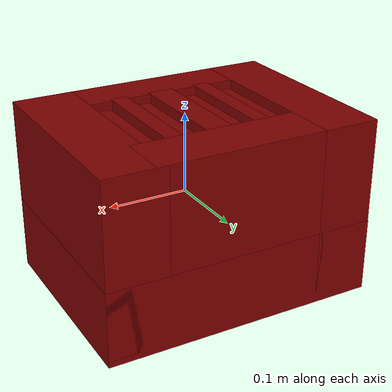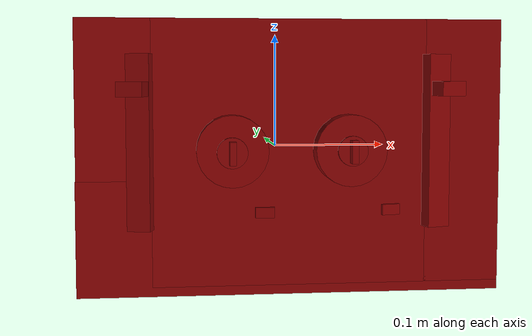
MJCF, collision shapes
<?xml version='1.0' encoding='UTF-8'?>
<mujoco model="model">
  <compiler angle="radian"/>
  <asset>
    <mesh file="visuals/Body001.obj" name="Body001_vis"/>
    <mesh file="visuals/Button001.obj" name="Button001_vis"/>
    <mesh file="visuals/Button002.obj" name="Button002_vis"/>
    <mesh file="visuals/Knob001.obj" name="Knob001_vis"/>
    <mesh file="visuals/Knob002.obj" name="Knob002_vis"/>
    <mesh file="visuals/Lever001.obj" name="Lever001_vis"/>
    <mesh file="visuals/Lever002.obj" name="Lever002_vis"/>
    <texture file="visuals/T_BC001.png" name="Body001_material" type="2d"/>
    <material name="Body001_material" rgba="1 1 1 1.0" texture="Body001_material" shininess="0.1" specular="3"/>
    <texture file="visuals/T_BC001.png" name="Button001_material" type="2d"/>
    <material name="Button001_material" rgba="1 1 1 1.0" texture="Button001_material" shininess="0.4472135901451111" specular="0.3103448502657381"/>
    <texture file="visuals/T_BC001.png" name="Button002_material" type="2d"/>
    <material name="Button002_material" rgba="1 1 1 1.0" texture="Button002_material" shininess="0.4472135901451111" specular="0.3103448502657381"/>
    <texture file="visuals/T_BC001.png" name="Knob001_material" type="2d"/>
    <material name="Knob001_material" rgba="1 1 1 1.0" texture="Knob001_material" shininess="0.4472135901451111" specular="0.3103448502657381"/>
    <texture file="visuals/T_BC001.png" name="Knob002_material" type="2d"/>
    <material name="Knob002_material" rgba="1 1 1 1.0" texture="Knob002_material" shininess="0.4472135901451111" specular="0.3103448502657381"/>
    <texture file="visuals/T_BC001.png" name="Lever001_material" type="2d"/>
    <material name="Lever001_material" rgba="1 1 1 1.0" texture="Lever001_material" shininess="0.4472135901451111" specular="0.3103448502657381"/>
    <texture file="visuals/T_BC001.png" name="Lever002_material" type="2d"/>
    <material name="Lever002_material" rgba="1 1 1 1.0" texture="Lever002_material" shininess="0.4472135901451111" specular="0.3103448502657381"/>
  </asset>
  <default>
    <default class="visual">
      <geom conaffinity="0" contype="0" group="1" type="mesh"/>
    </default>
    <default class="collision">
      <geom group="0" rgba="0.5 0 0 0.5"/>
    </default>
    <default class="spawn">
      <geom group="0" rgba="1 1 1 0.5" contype="0" conaffinity="0"/>
      <site group="0" rgba="1 1 1 0.5"/>
    </default>
    <default class="region">
      <geom group="1" conaffinity="0" contype="0" rgba="0 1 0 0"/>
    </default>
  </default>
  <worldbody>
    <body>
      <body name="object">
        <geom mesh="Body001_vis" type="mesh" solimp="0.998 0.998 0.001" solref="0.001 1" density="100" friction="0.95 0.3 0.1" class="visual" material="Body001_material"/>
        <geom class="collision" type="box" pos="-0.133261 0.016201 0.003077" size="0.035240065306425095 0.1285618394613266 0.10625135898590088" quat="1.0 0.0 0.0 0.0"/>
        <geom class="collision" type="box" pos="0.134029 0.016201 0.003077" size="0.03781827911734581 0.1285618394613266 0.10625135898590088" quat="1.0 0.0 0.0 0.0"/>
        <geom class="collision" type="box" pos="0.000245 0.111579 0.003077" size="0.10979682207107544 0.03318332880735397 0.10625135898590088" quat="1.0 0.0 0.0 0.0"/>
        <geom class="collision" type="box" pos="0.000245 -0.085129 0.003010" size="0.10979682207107544 0.027723005041480064 0.1061844676733017" quat="1.0 0.0 0.0 0.0"/>
        <geom class="collision" type="box" pos="-0.055768 0.007889 0.003124" size="0.01008566189557314 0.07094787806272507 0.1062992662191391" quat="1.0 0.0 0.0 0.0"/>
        <geom class="collision" type="box" pos="0.000027 0.007889 0.003124" size="0.01638152450323105 0.070948526263237 0.10630057752132416" quat="1.0 0.0 0.0 0.0"/>
        <geom class="collision" type="box" pos="0.056307 0.007889 0.003124" size="0.010627384297549725 0.07094787806272507 0.1062992662191391" quat="1.0 0.0 0.0 0.0"/>
        <geom class="collision" type="box" pos="0.001386 0.016201 -0.064605" size="0.1704617291688919 0.1285618394613266 0.046193644404411316" quat="1.0 0.0 0.0 0.0"/>
        <geom class="collision" type="box" pos="0.110583 -0.090029 0.012274" size="0.009369805455207825 0.0328972153365612 0.06929251551628113" quat="0.990662693977356 0.0 0.0 0.13633568584918976"/>
        <geom class="collision" type="box" pos="-0.111414 -0.088763 0.012274" size="0.0093698063865304 0.032897211611270905 0.06929251551628113" quat="0.9915878176689148 0.0 0.0 -0.12943574786186218"/>
        <geom class="collision" type="cylinder" pos="0.046797 -0.116307 0.005678" size="0.02828233130276203 0.013564642518758774" quat="0.7070810198783875 0.707082211971283 0.005967419594526291 0.005967406556010246"/>
        <geom class="collision" type="cylinder" pos="-0.046415 -0.115809 0.005678" size="0.028282327577471733 0.013564642518758774" quat="0.7070971727371216 0.7070972323417664 -0.0036777539644390345 -0.0036777500063180923"/>
        <body name="Button001">
          <joint axis="0.13791204988956451 0.9904444217681885 0.0" pos="-0.065784 -0.121630 -0.042317" limited="true" name="Button001_joint" range="0.0 0.001" type="slide" damping="1" frictionloss="1" armature=".01" stiffness="0.05"/>
          <geom mesh="Button001_vis" type="mesh" solimp="0.998 0.998 0.001" solref="0.001 1" density="100" friction="0.95 0.3 0.1" class="visual" material="Button001_material"/>
          <geom class="collision" type="box" pos="-0.021485 -0.126791 -0.042383" size="0.007460217922925949 0.0014258968876674771 0.004223212134093046" quat="0.9994127750396729 0.0 0.0 -0.034265268594026566"/>
        </body>
        <body name="Button002">
          <joint axis="0.09130799770355225 0.9958226680755615 0.0" pos="-0.043810 -0.124354 -0.042317" limited="true" name="Button002_joint" range="0.0 0.001" type="slide" damping="1" frictionloss="1" armature=".01" stiffness="0.05"/>
          <geom mesh="Button002_vis" type="mesh" solimp="0.998 0.998 0.001" solref="0.001 1" density="100" friction="0.95 0.3 0.1" class="visual" material="Button002_material"/>
          <geom class="collision" type="box" pos="0.080363 -0.119624 -0.042383" size="0.007460219319909811 0.0016084511298686266 0.004223212134093046" quat="0.9959295988082886 0.0 0.0 0.09013443440198898"/>
        </body>
        <body name="Knob001">
          <joint axis="0.0 1.0 0.0" pos="-0.047179 -0.135394 0.004906" limited="true" name="Knob001_joint" range="0.0 5.235987755982989" type="hinge" damping="0.05" armature="0.001"/>
          <geom mesh="Knob001_vis" type="mesh" solimp="0.998 0.998 0.001" solref="0.001 1" density="100" friction="0.95 0.3 0.1" class="visual" material="Knob001_material"/>
          <geom class="collision" type="cylinder" pos="-0.047131 -0.131926 0.004874" size="0.012079643085598946 0.0018937515560537577" quat="0.7071067094802856 0.7071068286895752 7.26924465066503e-10 -7.269246315999567e-10"/>
          <geom class="collision" type="box" pos="-0.047144 -0.138982 0.005069" size="0.002570041688159108 0.004999999888241291 0.009000841528177261" quat="1.0 0.0 0.0 0.0"/>
        </body>
        <body name="Knob002">
          <joint axis="0.0 1.0 0.0" pos="0.047272 -0.135394 0.005666" limited="true" name="Knob002_joint" range="0.0 5.235987755982989" type="hinge" damping="0.05" armature="0.001"/>
          <geom mesh="Knob002_vis" type="mesh" solimp="0.998 0.998 0.001" solref="0.001 1" density="100" friction="0.95 0.3 0.1" class="visual" material="Knob002_material"/>
          <geom class="collision" type="cylinder" pos="0.047206 -0.132238 0.005707" size="0.011814817786216736 0.001532990951091051" quat="0.7071067094802856 0.7071068286895752 0.0 0.0"/>
          <geom class="collision" type="box" pos="0.047156 -0.138982 0.005612" size="0.002570041688159108 0.004999999888241291 0.009000841528177261" quat="1.0 0.0 0.0 0.0"/>
        </body>
        <body name="Lever001">
          <joint axis="0.0 0.0 -1.0" pos="-0.122817 -0.129740 0.054402" limited="true" name="Lever001_joint" range="0.0 0.09" type="slide" damping="1" frictionloss="-0.1" armature=".01" stiffness="1" springref="-0.3"/>
          <geom mesh="Lever001_vis" type="mesh" solimp="0.998 0.998 0.001" solref="0.001 1" density="100" friction="0.95 0.3 0.1" class="visual" material="Lever001_material"/>
          <geom class="collision" type="box" pos="-0.123145 -0.132357 0.054361" size="0.010249958373606205 0.008345482870936394 0.005683100316673517" quat="0.9908793568611145 0.0 0.0 -0.13475200533866882" name="sideL_lever_knob"/>
          <geom class="collision" type="cylinder" pos="-0.121109 -0.124161 0.054345" size="0.0021992006804794073 0.002115406095981598" quat="0.7001230716705322 0.7001232504844666 -0.09913411736488342 -0.09913410991430283"/>
          <geom class="collision" type="box" pos="-0.081785 0.009881 0.098904" size="0.012500007636845112 0.06499999761581421 0.00025407271459698677" quat="1.0 0.0 0.0 0.0" name="sideL_slotL_floor"/>
          <geom class="collision" type="box" pos="-0.031527 0.009881 0.098904" size="0.012499970383942127 0.0650000348687172 0.0002540720743127167" quat="1.0 0.0 0.0 0.0" name="sideL_slotR_floor"/>
        </body>
        <body name="Lever002">
          <joint axis="0.0 0.0 -1.0" pos="0.122817 -0.129740 0.054402" limited="true" name="Lever002_joint" range="0.0 0.09" type="slide" damping="1" frictionloss="-0.1" armature=".01" stiffness="1" springref="-0.3"/>
          <geom mesh="Lever002_vis" type="mesh" solimp="0.998 0.998 0.001" solref="0.001 1" density="100" friction="0.95 0.3 0.1" class="visual" material="Lever002_material"/>
          <geom class="collision" type="cylinder" pos="0.121091 -0.124019 0.054641" size="0.002194224623963237 0.0016707158647477627" quat="0.7001231908798218 -0.700123131275177 -0.09913408011198044 0.09913408011198044"/>
          <geom class="collision" type="box" pos="0.123232 -0.132357 0.054361" size="0.010249958373606205 0.008345482870936394 0.005683100316673517" quat="7.480930719339085e-08 0.9908793568611145 0.13475200533866882 1.0173501152621611e-08" name="sideR_lever_knob"/>
          <geom class="collision" type="box" pos="0.031299 0.009881 0.098904" size="0.01249999925494194 0.06499999761581421 0.00025407271459698677" quat="1.0 0.0 0.0 0.0" name="sideR_slotL_floor"/>
          <geom class="collision" type="box" pos="0.082476 0.009881 0.098904" size="0.012499981559813023 0.06499997526407242 0.00025407233624719083" quat="1.0 0.0 0.0 0.0" name="sideR_slotR_floor"/>
        </body>
        <geom class="region" name="reg_main" type="box" pos="0.0 0.006601499999999996 0.0" size="0.170104 0.1376635 0.108989"/>
      </body>
    </body>
  </worldbody>
  <actuator>
    <motor name="Button001_joint_actuator" joint="Button001_joint" gear="0.5"/>
    <motor name="Button002_joint_actuator" joint="Button002_joint" gear="0.5"/>
    <motor name="Knob001_joint_actuator" joint="Knob001_joint" gear="5"/>
    <motor name="Knob002_joint_actuator" joint="Knob002_joint" gear="5"/>
    <motor name="Lever001_joint_actuator" joint="Lever001_joint" gear="2"/>
    <motor name="Lever002_joint_actuator" joint="Lever002_joint" gear="2"/>
  </actuator>
</mujoco>
